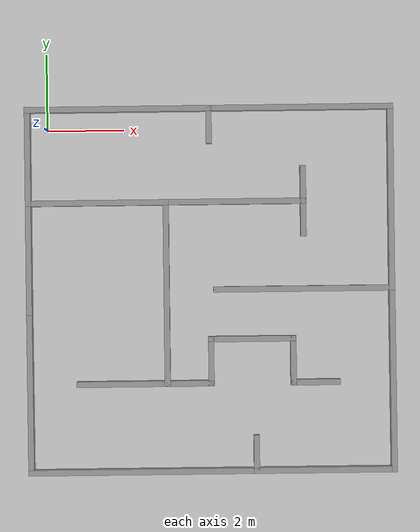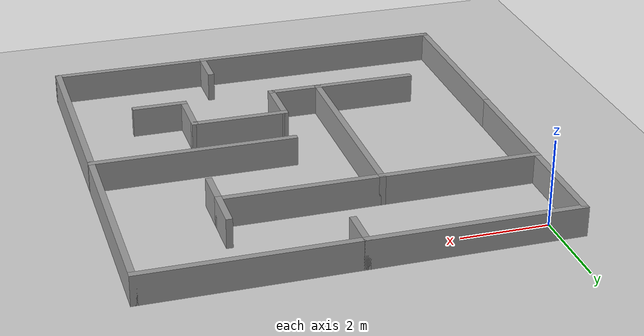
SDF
<sdf version="1.6">
 <world name="default">
  <light name="sun" type="directional">
   <pose>0 0 10 0 -0 0</pose>
   <diffuse>0.8 0.8 0.8 1</diffuse>
   <specular>0.2 0.2 0.2 1</specular>
   <attenuation>
    <range>1000</range>
    <constant>0.9</constant>
    <linear>0.01</linear>
    <quadratic>0.001</quadratic>
   </attenuation>
   <direction>-0.5 0.1 -0.9</direction>
  </light>
  <model name="ground_plane">
   <static>1</static>
   <link name="link">
    <collision name="collision">
     <geometry><plane><normal>0 0 1</normal><size>100 100</size></plane></geometry>
     <surface>
      <contact><collide_bitmask>65535</collide_bitmask></contact>
      <friction><ode><mu>100</mu><mu2>50</mu2></ode></friction>
     </surface>
    </collision>
    <visual name="visual">
     <cast_shadows>0</cast_shadows>
     <geometry><plane><normal>0 0 1</normal><size>100 100</size></plane></geometry>
     <material>
      <script><uri>file://media/materials/scripts/gazebo.material</uri><name>Gazebo/Grey</name></script>
     </material>
    </visual>
   </link>
  </model>
  <gravity>0 0 -9.8</gravity>
  <magnetic_field>6e-06 2.3e-05 -4.2e-05</magnetic_field>
  <atmosphere type="adiabatic"/>
  <physics name="default_physics" default="0" type="ode">
   <max_step_size>0.001</max_step_size>
   <real_time_factor>1</real_time_factor>
   <real_time_update_rate>1000</real_time_update_rate>
  </physics>
  <scene><ambient>0.4 0.4 0.4 1</ambient><background>0.7 0.7 0.7 1</background><shadows>1</shadows></scene>
  <spherical_coordinates>
   <surface_model>EARTH_WGS84</surface_model>
   <latitude_deg>0</latitude_deg>
   <longitude_deg>0</longitude_deg>
   <elevation>0</elevation>
   <heading_deg>0</heading_deg>
  </spherical_coordinates>
  <model name="race_road2.0">
   <pose>4.24132 -4.21302 -0.920448 0 -0 0</pose>
   <link name="Wall_22">
    <collision name="Wall_22_Collision">
     <geometry><box><size>4.9 0.15 0.69</size></box></geometry>
     <pose>0 0 1.25 0 -0 0</pose>
    </collision>
    <visual name="Wall_22_Visual">
     <pose>0 0 1.25 0 -0 0</pose>
     <geometry><box><size>4.9 0.15 0.69</size></box></geometry>
     <material>
      <script><uri>file://media/materials/scripts/gazebo.material</uri><name>Gazebo/Grey</name></script>
      <ambient>1 1 1 1</ambient>
     </material>
     <meta><layer>0</layer></meta>
    </visual>
    <pose>-2.3808 4.7501 0 0 -0 0</pose>
   </link>
   <link name="Wall_24">
    <collision name="Wall_24_Collision">
     <geometry><box><size>1 0.15 0.69</size></box></geometry>
     <pose>0 0 1.25 0 -0 0</pose>
    </collision>
    <visual name="Wall_24_Visual">
     <pose>0 0 1.25 0 -0 0</pose>
     <geometry><box><size>1 0.15 0.69</size></box></geometry>
     <material>
      <script><uri>file://media/materials/scripts/gazebo.material</uri><name>Gazebo/Grey</name></script>
      <ambient>1 1 1 1</ambient>
     </material>
     <meta><layer>0</layer></meta>
    </visual>
    <pose>-0.005804 4.3251 0 0 -0 -1.5708</pose>
   </link>
   <link name="Wall_26">
    <collision name="Wall_26_Collision">
     <geometry><box><size>4.9 0.15 0.69</size></box></geometry>
     <pose>0 0 1.25 0 -0 0</pose>
    </collision>
    <visual name="Wall_26_Visual">
     <pose>0 0 1.25 0 -0 0</pose>
     <geometry><box><size>4.9 0.15 0.69</size></box></geometry>
     <material>
      <script><uri>file://media/materials/scripts/gazebo.material</uri><name>Gazebo/Grey</name></script>
      <ambient>1 1 1 1</ambient>
     </material>
     <meta><layer>0</layer></meta>
    </visual>
    <pose>2.3692 4.7501 0 0 -0 0</pose>
   </link>
   <link name="Wall_28">
    <collision name="Wall_28_Collision">
     <geometry><box><size>4.9 0.15 0.69</size></box></geometry>
     <pose>0 0 1.25 0 -0 0</pose>
    </collision>
    <visual name="Wall_28_Visual">
     <pose>0 0 1.25 0 -0 0</pose>
     <geometry><box><size>4.9 0.15 0.69</size></box></geometry>
     <material>
      <script><uri>file://media/materials/scripts/gazebo.material</uri><name>Gazebo/Grey</name></script>
      <ambient>1 1 1 1</ambient>
     </material>
     <meta><layer>0</layer></meta>
    </visual>
    <pose>4.7442 2.3751 0 0 -0 -1.5708</pose>
   </link>
   <link name="Wall_30">
    <collision name="Wall_30_Collision">
     <geometry><box><size>4.75 0.15 0.69</size></box></geometry>
     <pose>0 0 1.25 0 -0 0</pose>
    </collision>
    <visual name="Wall_30_Visual">
     <pose>0 0 1.25 0 -0 0</pose>
     <geometry><box><size>4.75 0.15 0.69</size></box></geometry>
     <material>
      <script><uri>file://media/materials/scripts/gazebo.material</uri><name>Gazebo/Grey</name></script>
      <ambient>1 1 1 1</ambient>
     </material>
     <meta><layer>0</layer></meta>
    </visual>
    <pose>2.4442 0.000104 0 0 -0 3.14159</pose>
   </link>
   <link name="Wall_32">
    <collision name="Wall_32_Collision">
     <geometry><box><size>4.9 0.15 0.69</size></box></geometry>
     <pose>0 0 1.25 0 -0 0</pose>
    </collision>
    <visual name="Wall_32_Visual">
     <pose>0 0 1.25 0 -0 0</pose>
     <geometry><box><size>4.9 0.15 0.69</size></box></geometry>
     <material>
      <script><uri>file://media/materials/scripts/gazebo.material</uri><name>Gazebo/Grey</name></script>
      <ambient>1 1 1 1</ambient>
     </material>
     <meta><layer>0</layer></meta>
    </visual>
    <pose>4.75001 -2.3749 0 0 -0 -1.56835</pose>
   </link>
   <link name="Wall_34">
    <collision name="Wall_34_Collision">
     <geometry><box><size>3.75 0.15 0.69</size></box></geometry>
     <pose>0 0 1.25 0 -0 0</pose>
    </collision>
    <visual name="Wall_34_Visual">
     <pose>0 0 1.25 0 -0 0</pose>
     <geometry><box><size>3.75 0.15 0.69</size></box></geometry>
     <material>
      <script><uri>file://media/materials/scripts/gazebo.material</uri><name>Gazebo/Grey</name></script>
      <ambient>1 1 1 1</ambient>
     </material>
     <meta><layer>0</layer></meta>
    </visual>
    <pose>2.95583 -4.7499 0 0 -0 3.14159</pose>
   </link>
   <link name="Wall_36">
    <collision name="Wall_36_Collision">
     <geometry><box><size>1 0.15 0.69</size></box></geometry>
     <pose>0 0 1.25 0 -0 0</pose>
    </collision>
    <visual name="Wall_36_Visual">
     <pose>0 0 1.25 0 -0 0</pose>
     <geometry><box><size>1 0.15 0.69</size></box></geometry>
     <material>
      <script><uri>file://media/materials/scripts/gazebo.material</uri><name>Gazebo/Grey</name></script>
      <ambient>1 1 1 1</ambient>
     </material>
     <meta><layer>0</layer></meta>
    </visual>
    <pose>1.15583 -4.3249 0 0 -0 1.5708</pose>
   </link>
   <link name="Wall_40">
    <collision name="Wall_40_Collision">
     <geometry><box><size>2.6 0.15 0.69</size></box></geometry>
     <pose>0 0 1.25 0 -0 0</pose>
    </collision>
    <visual name="Wall_40_Visual">
     <pose>0 0 1.25 0 -0 0</pose>
     <geometry><box><size>2.6 0.15 0.69</size></box></geometry>
     <material>
      <script><uri>file://media/materials/scripts/gazebo.material</uri><name>Gazebo/Grey</name></script>
      <ambient>1 1 1 1</ambient>
     </material>
     <meta><layer>0</layer></meta>
    </visual>
    <pose>-4.7558 3.5251 0 0 -0 -1.5708</pose>
   </link>
   <link name="Wall_50">
    <collision name="Wall_50_Collision">
     <geometry><box><size>3.75 0.15 0.69</size></box></geometry>
     <pose>0 0 1.25 0 -0 0</pose>
    </collision>
    <visual name="Wall_50_Visual">
     <pose>0 0 1.25 0 -0 0</pose>
     <geometry><box><size>3.75 0.15 0.69</size></box></geometry>
     <material>
      <script><uri>file://media/materials/scripts/gazebo.material</uri><name>Gazebo/Grey</name></script>
      <ambient>1 1 1 1</ambient>
     </material>
     <meta><layer>0</layer></meta>
    </visual>
    <pose>-2.9558 2.3001 0 0 -0 0</pose>
   </link>
   <link name="Wall_52">
    <collision name="Wall_52_Collision">
     <geometry><box><size>4.9 0.15 0.69</size></box></geometry>
     <pose>0 0 1.25 0 -0 0</pose>
    </collision>
    <visual name="Wall_52_Visual">
     <pose>0 0 1.25 0 -0 0</pose>
     <geometry><box><size>4.9 0.15 0.69</size></box></geometry>
     <material>
      <script><uri>file://media/materials/scripts/gazebo.material</uri><name>Gazebo/Grey</name></script>
      <ambient>1 1 1 1</ambient>
     </material>
     <meta><layer>0</layer></meta>
    </visual>
    <pose>-1.1558 -0.074896 0 0 -0 -1.5708</pose>
   </link>
   <link name="Wall_54">
    <collision name="Wall_54_Collision">
     <geometry><box><size>3.75 0.15 0.69</size></box></geometry>
     <pose>0 0 1.25 0 -0 0</pose>
    </collision>
    <visual name="Wall_54_Visual">
     <pose>0 0 1.25 0 -0 0</pose>
     <geometry><box><size>3.75 0.15 0.69</size></box></geometry>
     <material>
      <script><uri>file://media/materials/scripts/gazebo.material</uri><name>Gazebo/Grey</name></script>
      <ambient>1 1 1 1</ambient>
     </material>
     <meta><layer>0</layer></meta>
    </visual>
    <pose>0.644196 2.3001 0 0 -0 0</pose>
   </link>
   <link name="Wall_56">
    <collision name="Wall_56_Collision">
     <geometry><box><size>1 0.15 0.69</size></box></geometry>
     <pose>0 0 1.25 0 -0 0</pose>
    </collision>
    <visual name="Wall_56_Visual">
     <pose>0 0 1.25 0 -0 0</pose>
     <geometry><box><size>1 0.15 0.69</size></box></geometry>
     <material>
      <script><uri>file://media/materials/scripts/gazebo.material</uri><name>Gazebo/Grey</name></script>
      <ambient>1 1 1 1</ambient>
     </material>
     <meta><layer>0</layer></meta>
    </visual>
    <pose>2.4442 2.7251 0 0 -0 1.5708</pose>
   </link>
   <link name="Wall_58">
    <collision name="Wall_58_Collision">
     <geometry><box><size>1 0.15 0.69</size></box></geometry>
     <pose>0 0 1.25 0 -0 0</pose>
    </collision>
    <visual name="Wall_58_Visual">
     <pose>0 0 1.25 0 -0 0</pose>
     <geometry><box><size>1 0.15 0.69</size></box></geometry>
     <material>
      <script><uri>file://media/materials/scripts/gazebo.material</uri><name>Gazebo/Grey</name></script>
      <ambient>1 1 1 1</ambient>
     </material>
     <meta><layer>0</layer></meta>
    </visual>
    <pose>2.4442 1.8751 0 0 -0 -1.5708</pose>
   </link>
   <link name="Wall_60">
    <collision name="Wall_60_Collision">
     <geometry><box><size>2.45 0.15 0.69</size></box></geometry>
     <pose>0 0 1.25 0 -0 0</pose>
    </collision>
    <visual name="Wall_60_Visual">
     <pose>0 0 1.25 0 -0 0</pose>
     <geometry><box><size>2.45 0.15 0.69</size></box></geometry>
     <material>
      <script><uri>file://media/materials/scripts/gazebo.material</uri><name>Gazebo/Grey</name></script>
      <ambient>1 1 1 1</ambient>
     </material>
     <meta><layer>0</layer></meta>
    </visual>
    <pose>-2.3058 -2.4499 0 0 -0 3.14159</pose>
   </link>
   <link name="Wall_62">
    <collision name="Wall_62_Collision">
     <geometry><box><size>1.3 0.15 0.69</size></box></geometry>
     <pose>0 0 1.25 0 -0 0</pose>
    </collision>
    <visual name="Wall_62_Visual">
     <pose>0 0 1.25 0 -0 0</pose>
     <geometry><box><size>1.3 0.15 0.69</size></box></geometry>
     <material>
      <script><uri>file://media/materials/scripts/gazebo.material</uri><name>Gazebo/Grey</name></script>
      <ambient>1 1 1 1</ambient>
     </material>
     <meta><layer>0</layer></meta>
    </visual>
    <pose>-0.580804 -2.4499 0 0 -0 0</pose>
   </link>
   <link name="Wall_64">
    <collision name="Wall_64_Collision">
     <geometry><box><size>1.3 0.15 0.69</size></box></geometry>
     <pose>0 0 1.25 0 -0 0</pose>
    </collision>
    <visual name="Wall_64_Visual">
     <pose>0 0 1.25 0 -0 0</pose>
     <geometry><box><size>1.3 0.15 0.69</size></box></geometry>
     <material>
      <script><uri>file://media/materials/scripts/gazebo.material</uri><name>Gazebo/Grey</name></script>
      <ambient>1 1 1 1</ambient>
     </material>
     <meta><layer>0</layer></meta>
    </visual>
    <pose>-0.005804 -1.8749 0 0 -0 1.5708</pose>
   </link>
   <link name="Wall_66">
    <collision name="Wall_66_Collision">
     <geometry><box><size>2.3 0.15 0.69</size></box></geometry>
     <pose>0 0 1.25 0 -0 0</pose>
    </collision>
    <visual name="Wall_66_Visual">
     <pose>0 0 1.25 0 -0 0</pose>
     <geometry><box><size>2.3 0.15 0.69</size></box></geometry>
     <material>
      <script><uri>file://media/materials/scripts/gazebo.material</uri><name>Gazebo/Grey</name></script>
      <ambient>1 1 1 1</ambient>
     </material>
     <meta><layer>0</layer></meta>
    </visual>
    <pose>1.06902 -1.30005 0 0 -0 -0.000141</pose>
   </link>
   <link name="Wall_68">
    <collision name="Wall_68_Collision">
     <geometry><box><size>1.3 0.15 0.69</size></box></geometry>
     <pose>0 0 1.25 0 -0 0</pose>
    </collision>
    <visual name="Wall_68_Visual">
     <pose>0 0 1.25 0 -0 0</pose>
     <geometry><box><size>1.3 0.15 0.69</size></box></geometry>
     <material>
      <script><uri>file://media/materials/scripts/gazebo.material</uri><name>Gazebo/Grey</name></script>
      <ambient>1 1 1 1</ambient>
     </material>
     <meta><layer>0</layer></meta>
    </visual>
    <pose>2.14384 -1.8752 0 0 -0 -1.5708</pose>
   </link>
   <link name="Wall_70">
    <collision name="Wall_70_Collision">
     <geometry><box><size>1.3 0.15 0.69</size></box></geometry>
     <pose>0 0 1.25 0 -0 0</pose>
    </collision>
    <visual name="Wall_70_Visual">
     <pose>0 0 1.25 0 -0 0</pose>
     <geometry><box><size>1.3 0.15 0.69</size></box></geometry>
     <material>
      <script><uri>file://media/materials/scripts/gazebo.material</uri><name>Gazebo/Grey</name></script>
      <ambient>1 1 1 1</ambient>
     </material>
     <meta><layer>0</layer></meta>
    </visual>
    <pose>2.71884 -2.4502 0 0 -0 0</pose>
   </link>
   <link name="Wall_72">
    <collision name="Wall_72_Collision">
     <geometry><box><size>3 0.15 0.69</size></box></geometry>
     <pose>0 0 1.25 0 -0 0</pose>
    </collision>
    <visual name="Wall_72_Visual">
     <pose>0 0 1.25 0 -0 0</pose>
     <geometry><box><size>3 0.15 0.69</size></box></geometry>
     <material>
      <script><uri>file://media/materials/scripts/gazebo.material</uri><name>Gazebo/Grey</name></script>
      <ambient>1 1 1 1</ambient>
     </material>
     <meta><layer>0</layer></meta>
    </visual>
    <pose>-4.7558 0.875104 0 0 -0 -1.5708</pose>
   </link>
   <link name="Wall_74">
    <collision name="Wall_74_Collision">
     <geometry><box><size>6.05 0.15 0.69</size></box></geometry>
     <pose>0 0 1.25 0 -0 0</pose>
    </collision>
    <visual name="Wall_74_Visual">
     <pose>0 0 1.25 0 -0 0</pose>
     <geometry><box><size>6.05 0.15 0.69</size></box></geometry>
     <material>
      <script><uri>file://media/materials/scripts/gazebo.material</uri><name>Gazebo/Grey</name></script>
      <ambient>1 1 1 1</ambient>
     </material>
     <meta><layer>0</layer></meta>
    </visual>
    <pose>-1.79417 -4.7499 0 0 -0 3.14159</pose>
   </link>
   <link name="Wall_77">
    <collision name="Wall_77_Collision">
     <geometry><box><size>4.35002 0.15 0.69</size></box></geometry>
     <pose>0 0 1.25 0 -0 0</pose>
    </collision>
    <visual name="Wall_77_Visual">
     <pose>0 0 1.25 0 -0 0</pose>
     <geometry><box><size>4.35002 0.15 0.69</size></box></geometry>
     <material>
      <script><uri>file://media/materials/scripts/gazebo.material</uri><name>Gazebo/Grey</name></script>
      <ambient>1 1 1 1</ambient>
     </material>
     <meta><layer>0</layer></meta>
    </visual>
    <pose>-4.74999 -2.6499 0 0 -0 -1.56803</pose>
   </link>
   <static>1</static>
  </model>
 </world>
</sdf>
